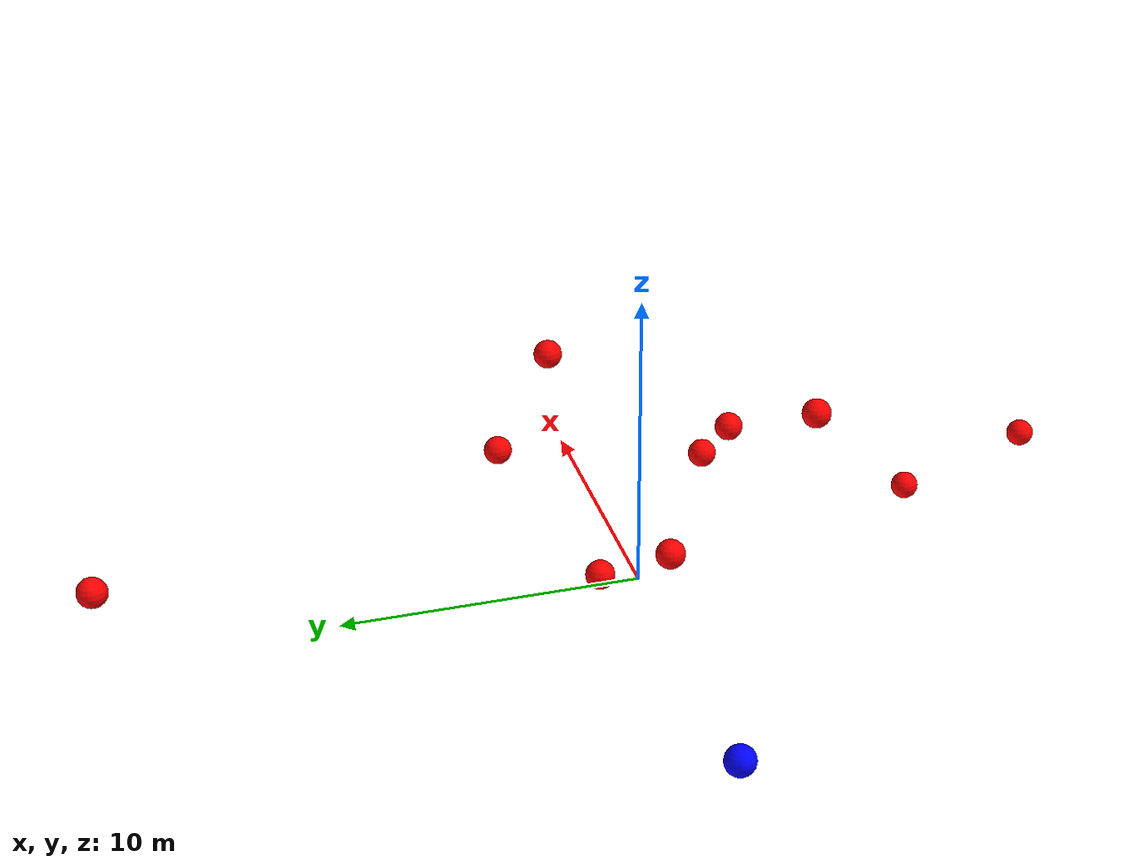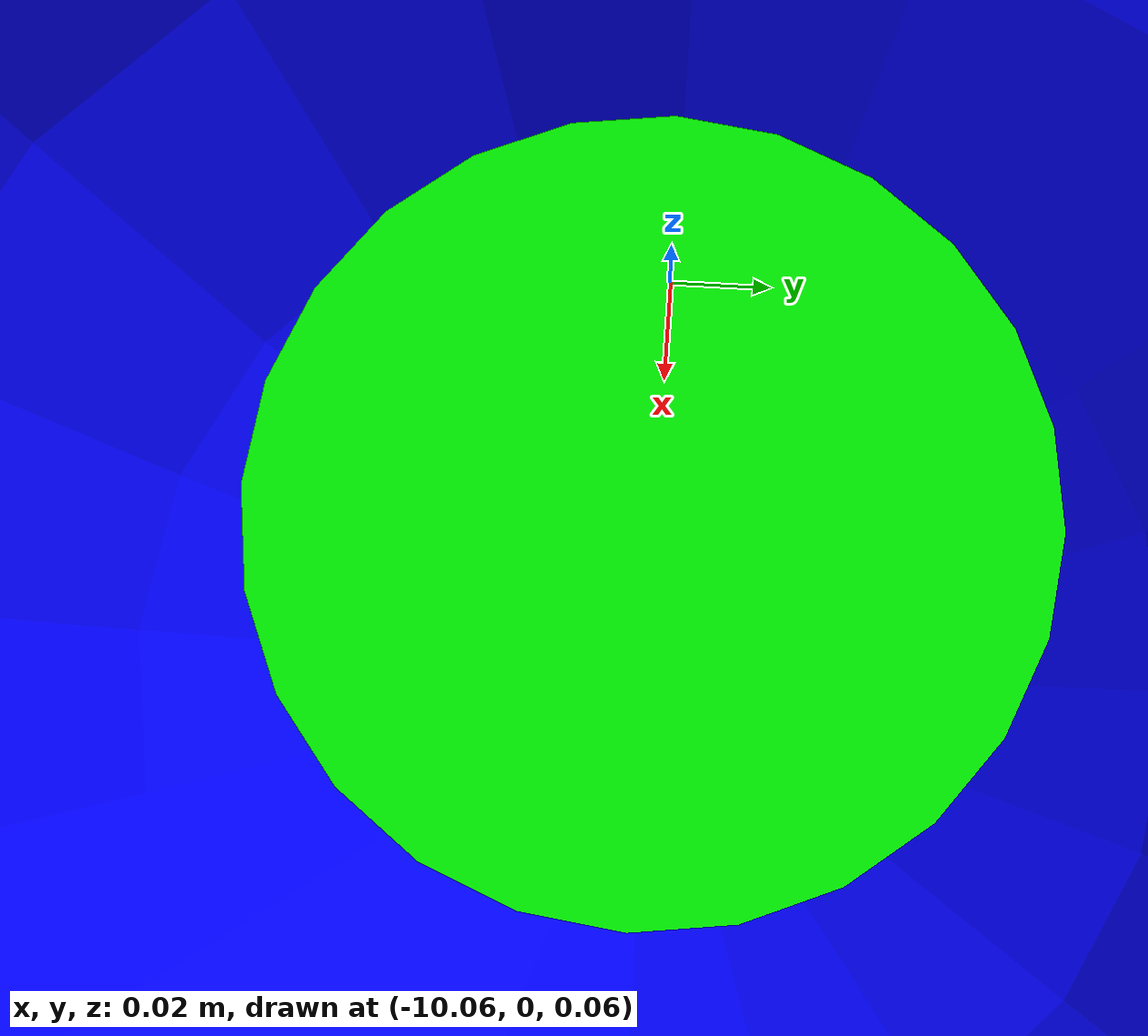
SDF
<?xml version="1.0" ?>
<sdf version="1.8">
    <world name="3d_world">
        <physics name="1ms" type="ode">
            <max_step_size>0.001</max_step_size>
            <real_time_factor>1.0</real_time_factor>
            <real_time_update_rate>1000.0</real_time_update_rate>
        </physics>
        <gravity>0 0 0</gravity>

        <plugin
            filename="gz-sim-physics-system"
            name="gz::sim::v8::systems::Physics">
        </plugin>
        <plugin
            filename="libignition-gazebo-user-commands-system.so"
            name="ignition::gazebo::systems::UserCommands">
        </plugin>
        <plugin
            filename="gz-sim-scene-broadcaster-system"
            name="gz::sim::systems::SceneBroadcaster">
        </plugin>
        <plugin
            filename="gz-sim-sensors-system"
            name="gz::sim::systems::Sensors">
            <render_engine>ogre2</render_engine>
        </plugin>

        <light type="directional" name="sun">
            <cast_shadows>true</cast_shadows>
            <pose>0 0 10 0 0 0</pose>
            <diffuse>0.8 0.8 0.8 1</diffuse>
            <specular>0.2 0.2 0.2 1</specular>
            <attenuation>
                <range>1000</range>
                <constant>0.9</constant>
                <linear>0.01</linear>
                <quadratic>0.001</quadratic>
            </attenuation>
            <direction>-0.5 0.1 -0.9</direction>
        </light>

        <!-- AGENTE -->
        <model name='agente' canonical_link='chassis'>
            <pose relative_to='world'>-10.0 0 0.0 0 0 0</pose>
            <link name='chassis'>
                <pose relative_to='__model__'>0.0 0 0.0 0 0 0</pose>
                <inertial>
                    <mass>1.14395</mass>
                    <inertia>
                        <ixx>0.095329</ixx>
                        <ixy>0</ixy>
                        <ixz>0</ixz>
                        <iyy>0.381317</iyy>
                        <iyz>0</iyz>
                        <izz>0.476646</izz>
                    </inertia>
                </inertial>
                <visual name='visual'>
                    <geometry>
                        <sphere>
                            <radius>0.5</radius>
                        </sphere>
                    </geometry>
                    <material>
                        <ambient>0.0 0.0 1.0 1</ambient>
                        <diffuse>0.0 0.0 1.0 1</diffuse>
                        <specular>0.0 0.0 1.0 1</specular>
                    </material>
                </visual>
                <collision name='collision'>
                    <geometry>
                        <sphere>
                            <radius>0.5</radius>
                        </sphere>
                    </geometry>
                </collision>
                <enable_gravity>false</enable_gravity>
            </link>

            <link name='lidar_link'>
                <pose relative_to='chassis'>0.0 0 0.1 0 0 0</pose>
                <inertial>
                    <mass>0.1</mass>
                    <inertia>
                        <ixx>0.000166667</ixx>
                        <iyy>0.000166667</iyy>
                        <izz>0.000166667</izz>
                    </inertia>
                </inertial>
                <collision name='collision'>
                    <geometry>
                        <cylinder>
                            <radius>0.05</radius>
                            <length>0.1</length>
                        </cylinder>
                    </geometry>
                </collision>
                <visual name='visual'>
                    <geometry>
                        <cylinder>
                            <radius>0.05</radius>
                            <length>0.1</length>
                        </cylinder>
                    </geometry>
                    <material>
                        <ambient>0.0 1.0 0.0 1</ambient>
                        <diffuse>0.0 1.0 0.0 1</diffuse>
                        <specular>0.0 1.0 0.0 1</specular>
                    </material>
                </visual>
                <sensor name="lidar" type="gpu_lidar">
                    <topic>scan</topic>
                    <update_rate>10</update_rate>
                    <lidar>
                        <scan>
                            <horizontal>
                                <samples>5000</samples>
                                <resolution>1</resolution>
                                <min_angle>-3.14159</min_angle>
                                <max_angle>3.14159</max_angle>
                            </horizontal>
                        </scan>
                        <range>
                            <min>0.1</min>
                            <max>10.0</max>
                            <resolution>0.01</resolution>
                        </range>
                    </lidar>
                    <visualize>true</visualize>
                    <always_on>true</always_on>
                    <update_rate>10</update_rate>
                    <pose_frame>lidar</pose_frame>
                </sensor>
                <enable_gravity>false</enable_gravity>
            </link>

            <joint name="lidar_joint" type="fixed">
                <parent>chassis</parent>
                <child>lidar_link</child>
            </joint>

            <plugin
                filename="ignition-gazebo-joint-state-publisher-system"
                name="ignition::gazebo::systems::JointStatePublisher">
            </plugin>
            <plugin
                filename="ignition-gazebo-odometry-publisher-system"
                name="ignition::gazebo::systems::OdometryPublisher">
                <dimensions>3</dimensions>
            </plugin>
            <plugin
                filename="ignition-gazebo-velocity-control-system"
                name="ignition::gazebo::systems::VelocityControl">
                <initial_linear>0.0 0 0</initial_linear>
                <initial_angular>0 0 0.0</initial_angular>
            </plugin>
            <plugin
                filename="libignition-gazebo-pose-publisher-system.so"
                name="ignition::gazebo::systems::PosePublisher">
                <topic>/agente/pose</topic>
                <frame_id>agente</frame_id>
                <update_rate>30</update_rate>
            </plugin>
        </model>

        <!-- OBSTACLE 1 -->
        <model name='obstacle_1' canonical_link='obstacle'>
            <static>false</static>
            <pose relative_to='world'>1.25 -6.55 4.63 0 0 0</pose>
            <link name='obstacle'>
                <pose relative_to='__model__'>0.0 0 0.0 0 0 0</pose>
                <visual name='visual'>
                    <geometry>
                        <sphere>
                            <radius>0.50</radius>
                        </sphere>
                    </geometry>
                    <material>
                        <ambient>1.0 0.0 0.0 1</ambient>
                        <diffuse>1.0 0.0 0.0 1</diffuse>
                        <specular>1.0 0.0 0.0 1</specular>
                    </material>
                </visual>
                <collision name='collision'>
                    <geometry>
                        <sphere>
                            <radius>0.50</radius>
                        </sphere>
                    </geometry>
                </collision>
                <enable_gravity>false</enable_gravity>
            </link>

            <plugin
                filename="ignition-gazebo-velocity-control-system"
                name="ignition::gazebo::systems::VelocityControl">
                <initial_linear>0.31 1.28 -0.90</initial_linear>
                <initial_angular>0 0 0</initial_angular>
            </plugin>

            <plugin
                filename="ignition-gazebo-odometry-publisher-system"
                name="ignition::gazebo::systems::OdometryPublisher">
                <dimensions>3</dimensions>
            </plugin>
        </model>

        <!-- OBSTACLE 2 -->
        <model name='obstacle_2' canonical_link='obstacle'>
            <static>false</static>
            <pose relative_to='world'>0.37 1.23 0.17 0 0 0</pose>
            <link name='obstacle'>
                <pose relative_to='__model__'>0.0 0 0.0 0 0 0</pose>
                <visual name='visual'>
                    <geometry>
                        <sphere>
                            <radius>0.50</radius>
                        </sphere>
                    </geometry>
                    <material>
                        <ambient>1.0 0.0 0.0 1</ambient>
                        <diffuse>1.0 0.0 0.0 1</diffuse>
                        <specular>1.0 0.0 0.0 1</specular>
                    </material>
                </visual>
                <collision name='collision'>
                    <geometry>
                        <sphere>
                            <radius>0.50</radius>
                        </sphere>
                    </geometry>
                </collision>
                <enable_gravity>false</enable_gravity>
            </link>

            <plugin
                filename="ignition-gazebo-velocity-control-system"
                name="ignition::gazebo::systems::VelocityControl">
                <initial_linear>0.39 -0.25 -0.04</initial_linear>
                <initial_angular>0 0 0</initial_angular>
            </plugin>

            <plugin
                filename="ignition-gazebo-odometry-publisher-system"
                name="ignition::gazebo::systems::OdometryPublisher">
                <dimensions>3</dimensions>
            </plugin>
        </model>

        <!-- OBSTACLE 3 -->
        <model name='obstacle_3' canonical_link='obstacle'>
            <static>false</static>
            <pose relative_to='world'>5.71 -5.10 2.06 0 0 0</pose>
            <link name='obstacle'>
                <pose relative_to='__model__'>0.0 0 0.0 0 0 0</pose>
                <visual name='visual'>
                    <geometry>
                        <sphere>
                            <radius>0.50</radius>
                        </sphere>
                    </geometry>
                    <material>
                        <ambient>1.0 0.0 0.0 1</ambient>
                        <diffuse>1.0 0.0 0.0 1</diffuse>
                        <specular>1.0 0.0 0.0 1</specular>
                    </material>
                </visual>
                <collision name='collision'>
                    <geometry>
                        <sphere>
                            <radius>0.50</radius>
                        </sphere>
                    </geometry>
                </collision>
                <enable_gravity>false</enable_gravity>
            </link>

            <plugin
                filename="ignition-gazebo-velocity-control-system"
                name="ignition::gazebo::systems::VelocityControl">
                <initial_linear>-0.05 0.83 -0.33</initial_linear>
                <initial_angular>0 0 0</initial_angular>
            </plugin>

            <plugin
                filename="ignition-gazebo-odometry-publisher-system"
                name="ignition::gazebo::systems::OdometryPublisher">
                <dimensions>3</dimensions>
            </plugin>
        </model>

        <!-- OBSTACLE 4 -->
        <model name='obstacle_4' canonical_link='obstacle'>
            <static>false</static>
            <pose relative_to='world'>5.93 -4.19 0.99 0 0 0</pose>
            <link name='obstacle'>
                <pose relative_to='__model__'>0.0 0 0.0 0 0 0</pose>
                <visual name='visual'>
                    <geometry>
                        <sphere>
                            <radius>0.50</radius>
                        </sphere>
                    </geometry>
                    <material>
                        <ambient>1.0 0.0 0.0 1</ambient>
                        <diffuse>1.0 0.0 0.0 1</diffuse>
                        <specular>1.0 0.0 0.0 1</specular>
                    </material>
                </visual>
                <collision name='collision'>
                    <geometry>
                        <sphere>
                            <radius>0.50</radius>
                        </sphere>
                    </geometry>
                </collision>
                <enable_gravity>false</enable_gravity>
            </link>

            <plugin
                filename="ignition-gazebo-velocity-control-system"
                name="ignition::gazebo::systems::VelocityControl">
                <initial_linear>0.09 0.63 -0.15</initial_linear>
                <initial_angular>0 0 0</initial_angular>
            </plugin>

            <plugin
                filename="ignition-gazebo-odometry-publisher-system"
                name="ignition::gazebo::systems::OdometryPublisher">
                <dimensions>3</dimensions>
            </plugin>
        </model>

        <!-- OBSTACLE 5 -->
        <model name='obstacle_5' canonical_link='obstacle'>
            <static>false</static>
            <pose relative_to='world'>7.69 1.05 4.84 0 0 0</pose>
            <link name='obstacle'>
                <pose relative_to='__model__'>0.0 0 0.0 0 0 0</pose>
                <visual name='visual'>
                    <geometry>
                        <sphere>
                            <radius>0.50</radius>
                        </sphere>
                    </geometry>
                    <material>
                        <ambient>1.0 0.0 0.0 1</ambient>
                        <diffuse>1.0 0.0 0.0 1</diffuse>
                        <specular>1.0 0.0 0.0 1</specular>
                    </material>
                </visual>
                <collision name='collision'>
                    <geometry>
                        <sphere>
                            <radius>0.50</radius>
                        </sphere>
                    </geometry>
                </collision>
                <enable_gravity>false</enable_gravity>
            </link>

            <plugin
                filename="ignition-gazebo-velocity-control-system"
                name="ignition::gazebo::systems::VelocityControl">
                <initial_linear>-0.80 -0.20 -0.90</initial_linear>
                <initial_angular>0 0 0</initial_angular>
            </plugin>

            <plugin
                filename="ignition-gazebo-odometry-publisher-system"
                name="ignition::gazebo::systems::OdometryPublisher">
                <dimensions>3</dimensions>
            </plugin>
        </model>

        <!-- OBSTACLE 6 -->
        <model name='obstacle_6' canonical_link='obstacle'>
            <static>false</static>
            <pose relative_to='world'>-0.80 -0.83 1.32 0 0 0</pose>
            <link name='obstacle'>
                <pose relative_to='__model__'>0.0 0 0.0 0 0 0</pose>
                <visual name='visual'>
                    <geometry>
                        <sphere>
                            <radius>0.50</radius>
                        </sphere>
                    </geometry>
                    <material>
                        <ambient>1.0 0.0 0.0 1</ambient>
                        <diffuse>1.0 0.0 0.0 1</diffuse>
                        <specular>1.0 0.0 0.0 1</specular>
                    </material>
                </visual>
                <collision name='collision'>
                    <geometry>
                        <sphere>
                            <radius>0.50</radius>
                        </sphere>
                    </geometry>
                </collision>
                <enable_gravity>false</enable_gravity>
            </link>

            <plugin
                filename="ignition-gazebo-velocity-control-system"
                name="ignition::gazebo::systems::VelocityControl">
                <initial_linear>-0.45 0.27 -0.42</initial_linear>
                <initial_angular>0 0 0</initial_angular>
            </plugin>

            <plugin
                filename="ignition-gazebo-odometry-publisher-system"
                name="ignition::gazebo::systems::OdometryPublisher">
                <dimensions>3</dimensions>
            </plugin>
        </model>

        <!-- OBSTACLE 7 -->
        <model name='obstacle_7' canonical_link='obstacle'>
            <static>false</static>
            <pose relative_to='world'>1.26 17.40 1.85 0 0 0</pose>
            <link name='obstacle'>
                <pose relative_to='__model__'>0.0 0 0.0 0 0 0</pose>
                <visual name='visual'>
                    <geometry>
                        <sphere>
                            <radius>0.50</radius>
                        </sphere>
                    </geometry>
                    <material>
                        <ambient>1.0 0.0 0.0 1</ambient>
                        <diffuse>1.0 0.0 0.0 1</diffuse>
                        <specular>1.0 0.0 0.0 1</specular>
                    </material>
                </visual>
                <collision name='collision'>
                    <geometry>
                        <sphere>
                            <radius>0.50</radius>
                        </sphere>
                    </geometry>
                </collision>
                <enable_gravity>false</enable_gravity>
            </link>

            <plugin
                filename="ignition-gazebo-velocity-control-system"
                name="ignition::gazebo::systems::VelocityControl">
                <initial_linear>0.55 -1.91 -0.20</initial_linear>
                <initial_angular>0 0 0</initial_angular>
            </plugin>

            <plugin
                filename="ignition-gazebo-odometry-publisher-system"
                name="ignition::gazebo::systems::OdometryPublisher">
                <dimensions>3</dimensions>
            </plugin>
        </model>

        <!-- OBSTACLE 8 -->
        <model name='obstacle_8' canonical_link='obstacle'>
            <static>false</static>
            <pose relative_to='world'>7.35 3.04 1.46 0 0 0</pose>
            <link name='obstacle'>
                <pose relative_to='__model__'>0.0 0 0.0 0 0 0</pose>
                <visual name='visual'>
                    <geometry>
                        <sphere>
                            <radius>0.50</radius>
                        </sphere>
                    </geometry>
                    <material>
                        <ambient>1.0 0.0 0.0 1</ambient>
                        <diffuse>1.0 0.0 0.0 1</diffuse>
                        <specular>1.0 0.0 0.0 1</specular>
                    </material>
                </visual>
                <collision name='collision'>
                    <geometry>
                        <sphere>
                            <radius>0.50</radius>
                        </sphere>
                    </geometry>
                </collision>
                <enable_gravity>false</enable_gravity>
            </link>

            <plugin
                filename="ignition-gazebo-velocity-control-system"
                name="ignition::gazebo::systems::VelocityControl">
                <initial_linear>-1.84 -0.70 -0.34</initial_linear>
                <initial_angular>0 0 0</initial_angular>
            </plugin>

            <plugin
                filename="ignition-gazebo-odometry-publisher-system"
                name="ignition::gazebo::systems::OdometryPublisher">
                <dimensions>3</dimensions>
            </plugin>
        </model>

        <!-- OBSTACLE 9 -->
        <model name='obstacle_9' canonical_link='obstacle'>
            <static>false</static>
            <pose relative_to='world'>5.78 -12.30 -1.57 0 0 0</pose>
            <link name='obstacle'>
                <pose relative_to='__model__'>0.0 0 0.0 0 0 0</pose>
                <visual name='visual'>
                    <geometry>
                        <sphere>
                            <radius>0.50</radius>
                        </sphere>
                    </geometry>
                    <material>
                        <ambient>1.0 0.0 0.0 1</ambient>
                        <diffuse>1.0 0.0 0.0 1</diffuse>
                        <specular>1.0 0.0 0.0 1</specular>
                    </material>
                </visual>
                <collision name='collision'>
                    <geometry>
                        <sphere>
                            <radius>0.50</radius>
                        </sphere>
                    </geometry>
                </collision>
                <enable_gravity>false</enable_gravity>
            </link>

            <plugin
                filename="ignition-gazebo-velocity-control-system"
                name="ignition::gazebo::systems::VelocityControl">
                <initial_linear>-0.64 1.88 0.24</initial_linear>
                <initial_angular>0 0 0</initial_angular>
            </plugin>

            <plugin
                filename="ignition-gazebo-odometry-publisher-system"
                name="ignition::gazebo::systems::OdometryPublisher">
                <dimensions>3</dimensions>
            </plugin>
        </model>

        <!-- OBSTACLE 10 -->
        <model name='obstacle_10' canonical_link='obstacle'>
            <static>false</static>
            <pose relative_to='world'>6.85 -17.55 -0.66 0 0 0</pose>
            <link name='obstacle'>
                <pose relative_to='__model__'>0.0 0 0.0 0 0 0</pose>
                <visual name='visual'>
                    <geometry>
                        <sphere>
                            <radius>0.50</radius>
                        </sphere>
                    </geometry>
                    <material>
                        <ambient>1.0 0.0 0.0 1</ambient>
                        <diffuse>1.0 0.0 0.0 1</diffuse>
                        <specular>1.0 0.0 0.0 1</specular>
                    </material>
                </visual>
                <collision name='collision'>
                    <geometry>
                        <sphere>
                            <radius>0.50</radius>
                        </sphere>
                    </geometry>
                </collision>
                <enable_gravity>false</enable_gravity>
            </link>

            <plugin
                filename="ignition-gazebo-velocity-control-system"
                name="ignition::gazebo::systems::VelocityControl">
                <initial_linear>-0.87 1.80 0.07</initial_linear>
                <initial_angular>0 0 0</initial_angular>
            </plugin>

            <plugin
                filename="ignition-gazebo-odometry-publisher-system"
                name="ignition::gazebo::systems::OdometryPublisher">
                <dimensions>3</dimensions>
            </plugin>
        </model>

    </world>
</sdf>
